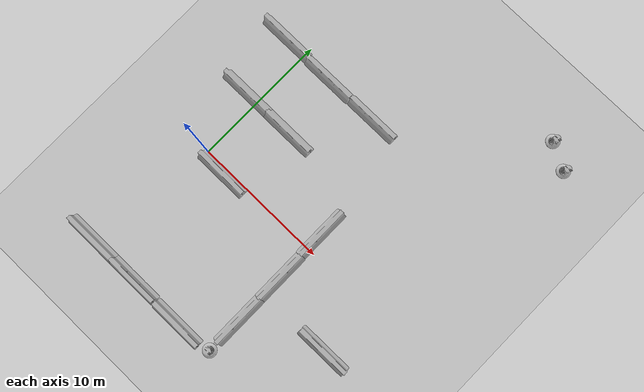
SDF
<sdf version="1.6">
 <world name="default">
  <model name="ground_plane">
   <static>1</static>
   <link name="link">
    <collision name="collision">
     <geometry><plane><normal>0 0 1</normal><size>100 100</size></plane></geometry>
     <surface><friction><ode><mu>100</mu><mu2>50</mu2></ode></friction></surface>
    </collision>
    <visual name="visual">
     <cast_shadows>0</cast_shadows>
     <geometry><plane><normal>0 0 1</normal><size>100 100</size></plane></geometry>
     <material>
      <script><uri>file://media/materials/scripts/gazebo.material</uri><name>Gazebo/Grey</name></script>
     </material>
    </visual>
   </link>
  </model>
  <model name="jersey_barrier_clone">
   <static>1</static>
   <link name="link">
    <visual name="visual">
     <geometry><mesh><uri>model://jersey_barrier/meshes/jersey_barrier.dae</uri></mesh></geometry>
    </visual>
    <collision name="upright">
     <pose>0 0 0.5715 0 -0 0</pose>
     <geometry><box><size>4.06542 0.3063 1.143</size></box></geometry>
    </collision>
    <collision name="base">
     <pose>0 0 0.032258 0 -0 0</pose>
     <geometry><box><size>4.06542 0.8107 0.064516</size></box></geometry>
    </collision>
    <collision name="base2">
     <pose>0 0 0.1 0 -0 0</pose>
     <geometry><box><size>4.06542 0.65 0.1</size></box></geometry>
    </collision>
    <collision name="base3">
     <pose>0 0 0.2 0 -0 0</pose>
     <geometry><box><size>4.06542 0.5 0.1</size></box></geometry>
    </collision>
    <collision name="left-angle">
     <pose>0 -0.224 0.2401 0.9 -0 0</pose>
     <geometry><box><size>4.06542 0.5 0.064516</size></box></geometry>
    </collision>
    <collision name="right-angle">
     <pose>0 0.224 0.2401 -0.9 0 0</pose>
     <geometry><box><size>4.06542 0.5 0.064516</size></box></geometry>
    </collision>
   </link>
   <pose>-1.65987 9.36075 0 0 -0 0</pose>
  </model>
  <model name="jersey_barrier_clone_0">
   <static>1</static>
   <link name="link">
    <visual name="visual">
     <geometry><mesh><uri>model://jersey_barrier/meshes/jersey_barrier.dae</uri></mesh></geometry>
    </visual>
    <collision name="upright">
     <pose>0 0 0.5715 0 -0 0</pose>
     <geometry><box><size>4.06542 0.3063 1.143</size></box></geometry>
    </collision>
    <collision name="base">
     <pose>0 0 0.032258 0 -0 0</pose>
     <geometry><box><size>4.06542 0.8107 0.064516</size></box></geometry>
    </collision>
    <collision name="base2">
     <pose>0 0 0.1 0 -0 0</pose>
     <geometry><box><size>4.06542 0.65 0.1</size></box></geometry>
    </collision>
    <collision name="base3">
     <pose>0 0 0.2 0 -0 0</pose>
     <geometry><box><size>4.06542 0.5 0.1</size></box></geometry>
    </collision>
    <collision name="left-angle">
     <pose>0 -0.224 0.2401 0.9 -0 0</pose>
     <geometry><box><size>4.06542 0.5 0.064516</size></box></geometry>
    </collision>
    <collision name="right-angle">
     <pose>0 0.224 0.2401 -0.9 0 0</pose>
     <geometry><box><size>4.06542 0.5 0.064516</size></box></geometry>
    </collision>
   </link>
   <pose>2.39773 9.29085 0 0 -0 0</pose>
  </model>
  <model name="jersey_barrier_clone_1">
   <static>1</static>
   <link name="link">
    <visual name="visual">
     <geometry><mesh><uri>model://jersey_barrier/meshes/jersey_barrier.dae</uri></mesh></geometry>
    </visual>
    <collision name="upright">
     <pose>0 0 0.5715 0 -0 0</pose>
     <geometry><box><size>4.06542 0.3063 1.143</size></box></geometry>
    </collision>
    <collision name="base">
     <pose>0 0 0.032258 0 -0 0</pose>
     <geometry><box><size>4.06542 0.8107 0.064516</size></box></geometry>
    </collision>
    <collision name="base2">
     <pose>0 0 0.1 0 -0 0</pose>
     <geometry><box><size>4.06542 0.65 0.1</size></box></geometry>
    </collision>
    <collision name="base3">
     <pose>0 0 0.2 0 -0 0</pose>
     <geometry><box><size>4.06542 0.5 0.1</size></box></geometry>
    </collision>
    <collision name="left-angle">
     <pose>0 -0.224 0.2401 0.9 -0 0</pose>
     <geometry><box><size>4.06542 0.5 0.064516</size></box></geometry>
    </collision>
    <collision name="right-angle">
     <pose>0 0.224 0.2401 -0.9 0 0</pose>
     <geometry><box><size>4.06542 0.5 0.064516</size></box></geometry>
    </collision>
   </link>
   <pose>6.45464 9.33993 0 0 -0 0</pose>
  </model>
  <model name="jersey_barrier_clone_3">
   <static>1</static>
   <link name="link">
    <visual name="visual">
     <geometry><mesh><uri>model://jersey_barrier/meshes/jersey_barrier.dae</uri></mesh></geometry>
    </visual>
    <collision name="upright">
     <pose>0 0 0.5715 0 -0 0</pose>
     <geometry><box><size>4.06542 0.3063 1.143</size></box></geometry>
    </collision>
    <collision name="base">
     <pose>0 0 0.032258 0 -0 0</pose>
     <geometry><box><size>4.06542 0.8107 0.064516</size></box></geometry>
    </collision>
    <collision name="base2">
     <pose>0 0 0.1 0 -0 0</pose>
     <geometry><box><size>4.06542 0.65 0.1</size></box></geometry>
    </collision>
    <collision name="base3">
     <pose>0 0 0.2 0 -0 0</pose>
     <geometry><box><size>4.06542 0.5 0.1</size></box></geometry>
    </collision>
    <collision name="left-angle">
     <pose>0 -0.224 0.2401 0.9 -0 0</pose>
     <geometry><box><size>4.06542 0.5 0.064516</size></box></geometry>
    </collision>
    <collision name="right-angle">
     <pose>0 0.224 0.2401 -0.9 0 0</pose>
     <geometry><box><size>4.06542 0.5 0.064516</size></box></geometry>
    </collision>
    <pose>9.44656 5.35522 0 0 0 -1.56865</pose>
    <velocity>0 0 0 0 -0 0</velocity>
    <acceleration>0 0 0 0 -0 0</acceleration>
    <wrench>0 0 0 0 -0 0</wrench>
   </link>
   <pose>9.44656 5.35522 0 0 0 -1.56865</pose>
   <scale>1 1 1</scale>
  </model>
  <model name="jersey_barrier_clone_3_clone">
   <static>1</static>
   <link name="link">
    <visual name="visual">
     <geometry><mesh><uri>model://jersey_barrier/meshes/jersey_barrier.dae</uri></mesh></geometry>
    </visual>
    <collision name="upright">
     <pose>0 0 0.5715 0 -0 0</pose>
     <geometry><box><size>4.06542 0.3063 1.143</size></box></geometry>
    </collision>
    <collision name="base">
     <pose>0 0 0.032258 0 -0 0</pose>
     <geometry><box><size>4.06542 0.8107 0.064516</size></box></geometry>
    </collision>
    <collision name="base2">
     <pose>0 0 0.1 0 -0 0</pose>
     <geometry><box><size>4.06542 0.65 0.1</size></box></geometry>
    </collision>
    <collision name="base3">
     <pose>0 0 0.2 0 -0 0</pose>
     <geometry><box><size>4.06542 0.5 0.1</size></box></geometry>
    </collision>
    <collision name="left-angle">
     <pose>0 -0.224 0.2401 0.9 -0 0</pose>
     <geometry><box><size>4.06542 0.5 0.064516</size></box></geometry>
    </collision>
    <collision name="right-angle">
     <pose>0 0.224 0.2401 -0.9 0 0</pose>
     <geometry><box><size>4.06542 0.5 0.064516</size></box></geometry>
    </collision>
   </link>
   <pose>9.3727 1.33119 0 0 0 -1.56865</pose>
  </model>
  <model name="jersey_barrier_clone_3_clone_0">
   <static>1</static>
   <link name="link">
    <visual name="visual">
     <geometry><mesh><uri>model://jersey_barrier/meshes/jersey_barrier.dae</uri></mesh></geometry>
    </visual>
    <collision name="upright">
     <pose>0 0 0.5715 0 -0 0</pose>
     <geometry><box><size>4.06542 0.3063 1.143</size></box></geometry>
    </collision>
    <collision name="base">
     <pose>0 0 0.032258 0 -0 0</pose>
     <geometry><box><size>4.06542 0.8107 0.064516</size></box></geometry>
    </collision>
    <collision name="base2">
     <pose>0 0 0.1 0 -0 0</pose>
     <geometry><box><size>4.06542 0.65 0.1</size></box></geometry>
    </collision>
    <collision name="base3">
     <pose>0 0 0.2 0 -0 0</pose>
     <geometry><box><size>4.06542 0.5 0.1</size></box></geometry>
    </collision>
    <collision name="left-angle">
     <pose>0 -0.224 0.2401 0.9 -0 0</pose>
     <geometry><box><size>4.06542 0.5 0.064516</size></box></geometry>
    </collision>
    <collision name="right-angle">
     <pose>0 0.224 0.2401 -0.9 0 0</pose>
     <geometry><box><size>4.06542 0.5 0.064516</size></box></geometry>
    </collision>
   </link>
   <pose>9.4315 -2.6268 0 0 0 -1.56865</pose>
  </model>
  <model name="jersey_barrier_clone_3_clone_1">
   <static>1</static>
   <link name="link">
    <visual name="visual">
     <geometry><mesh><uri>model://jersey_barrier/meshes/jersey_barrier.dae</uri></mesh></geometry>
    </visual>
    <collision name="upright">
     <pose>0 0 0.5715 0 -0 0</pose>
     <geometry><box><size>4.06542 0.3063 1.143</size></box></geometry>
    </collision>
    <collision name="base">
     <pose>0 0 0.032258 0 -0 0</pose>
     <geometry><box><size>4.06542 0.8107 0.064516</size></box></geometry>
    </collision>
    <collision name="base2">
     <pose>0 0 0.1 0 -0 0</pose>
     <geometry><box><size>4.06542 0.65 0.1</size></box></geometry>
    </collision>
    <collision name="base3">
     <pose>0 0 0.2 0 -0 0</pose>
     <geometry><box><size>4.06542 0.5 0.1</size></box></geometry>
    </collision>
    <collision name="left-angle">
     <pose>0 -0.224 0.2401 0.9 -0 0</pose>
     <geometry><box><size>4.06542 0.5 0.064516</size></box></geometry>
    </collision>
    <collision name="right-angle">
     <pose>0 0.224 0.2401 -0.9 0 0</pose>
     <geometry><box><size>4.06542 0.5 0.064516</size></box></geometry>
    </collision>
   </link>
   <pose>9.44969 -6.53485 0 0 0 -1.56865</pose>
  </model>
  <model name="jersey_barrier_clone_2_clone">
   <static>1</static>
   <link name="link">
    <visual name="visual">
     <geometry><mesh><uri>model://jersey_barrier/meshes/jersey_barrier.dae</uri></mesh></geometry>
    </visual>
    <collision name="upright">
     <pose>0 0 0.5715 0 -0 0</pose>
     <geometry><box><size>4.06542 0.3063 1.143</size></box></geometry>
    </collision>
    <collision name="base">
     <pose>0 0 0.032258 0 -0 0</pose>
     <geometry><box><size>4.06542 0.8107 0.064516</size></box></geometry>
    </collision>
    <collision name="base2">
     <pose>0 0 0.1 0 -0 0</pose>
     <geometry><box><size>4.06542 0.65 0.1</size></box></geometry>
    </collision>
    <collision name="base3">
     <pose>0 0 0.2 0 -0 0</pose>
     <geometry><box><size>4.06542 0.5 0.1</size></box></geometry>
    </collision>
    <collision name="left-angle">
     <pose>0 -0.224 0.2401 0.9 -0 0</pose>
     <geometry><box><size>4.06542 0.5 0.064516</size></box></geometry>
    </collision>
    <collision name="right-angle">
     <pose>0 0.224 0.2401 -0.9 0 0</pose>
     <geometry><box><size>4.06542 0.5 0.064516</size></box></geometry>
    </collision>
   </link>
   <pose>6.70657 -9.54347 0 0 -0 0</pose>
  </model>
  <model name="jersey_barrier_clone_2_clone_0">
   <static>1</static>
   <link name="link">
    <visual name="visual">
     <geometry><mesh><uri>model://jersey_barrier/meshes/jersey_barrier.dae</uri></mesh></geometry>
    </visual>
    <collision name="upright">
     <pose>0 0 0.5715 0 -0 0</pose>
     <geometry><box><size>4.06542 0.3063 1.143</size></box></geometry>
    </collision>
    <collision name="base">
     <pose>0 0 0.032258 0 -0 0</pose>
     <geometry><box><size>4.06542 0.8107 0.064516</size></box></geometry>
    </collision>
    <collision name="base2">
     <pose>0 0 0.1 0 -0 0</pose>
     <geometry><box><size>4.06542 0.65 0.1</size></box></geometry>
    </collision>
    <collision name="base3">
     <pose>0 0 0.2 0 -0 0</pose>
     <geometry><box><size>4.06542 0.5 0.1</size></box></geometry>
    </collision>
    <collision name="left-angle">
     <pose>0 -0.224 0.2401 0.9 -0 0</pose>
     <geometry><box><size>4.06542 0.5 0.064516</size></box></geometry>
    </collision>
    <collision name="right-angle">
     <pose>0 0.224 0.2401 -0.9 0 0</pose>
     <geometry><box><size>4.06542 0.5 0.064516</size></box></geometry>
    </collision>
   </link>
   <pose>2.59616 -9.50928 0 0 -0 0</pose>
  </model>
  <model name="jersey_barrier_clone_2_clone_1">
   <static>1</static>
   <link name="link">
    <visual name="visual">
     <geometry><mesh><uri>model://jersey_barrier/meshes/jersey_barrier.dae</uri></mesh></geometry>
    </visual>
    <collision name="upright">
     <pose>0 0 0.5715 0 -0 0</pose>
     <geometry><box><size>4.06542 0.3063 1.143</size></box></geometry>
    </collision>
    <collision name="base">
     <pose>0 0 0.032258 0 -0 0</pose>
     <geometry><box><size>4.06542 0.8107 0.064516</size></box></geometry>
    </collision>
    <collision name="base2">
     <pose>0 0 0.1 0 -0 0</pose>
     <geometry><box><size>4.06542 0.65 0.1</size></box></geometry>
    </collision>
    <collision name="base3">
     <pose>0 0 0.2 0 -0 0</pose>
     <geometry><box><size>4.06542 0.5 0.1</size></box></geometry>
    </collision>
    <collision name="left-angle">
     <pose>0 -0.224 0.2401 0.9 -0 0</pose>
     <geometry><box><size>4.06542 0.5 0.064516</size></box></geometry>
    </collision>
    <collision name="right-angle">
     <pose>0 0.224 0.2401 -0.9 0 0</pose>
     <geometry><box><size>4.06542 0.5 0.064516</size></box></geometry>
    </collision>
   </link>
   <pose>-1.33414 -9.50852 0 0 -0 0</pose>
  </model>
  <model name="Construction Barrel">
   <link name="link">
    <inertial>
     <pose>0 0 0.4 0 -0 0</pose>
     <mass>500</mass>
     <inertia><ixx>51.2096</ixx><iyy>51.2096</iyy><izz>25</izz><ixy>0</ixy><ixz>0</ixz><iyz>0</iyz></inertia>
    </inertial>
    <collision name="collision">
     <geometry><mesh><uri>model://construction_barrel/meshes/construction_barrel.dae</uri></mesh></geometry>
    </collision>
    <visual name="visual">
     <geometry><mesh><uri>model://construction_barrel/meshes/construction_barrel.dae</uri></mesh></geometry>
    </visual>
    <pose>9.07447 7.9106 -0 0 -0 -5.2e-05</pose>
    <velocity>0 0 0 0 -0 0</velocity>
    <acceleration>-3.87344 -0.445982 -0.496385 -2.02796 0.258707 3.1404</acceleration>
    <wrench>-1936.72 -222.991 -248.192 0 -0 0</wrench>
   </link>
   <pose>9.07447 7.9106 -0 0 -0 -5.2e-05</pose>
   <scale>1 1 1</scale>
  </model>
  <model name="Construction Barrel_0">
   <link name="link">
    <inertial>
     <pose>0 0 0.4 0 -0 0</pose>
     <mass>500</mass>
     <inertia><ixx>51.2096</ixx><iyy>51.2096</iyy><izz>25</izz><ixy>0</ixy><ixz>0</ixz><iyz>0</iyz></inertia>
    </inertial>
    <collision name="collision">
     <geometry><mesh><uri>model://construction_barrel/meshes/construction_barrel.dae</uri></mesh></geometry>
    </collision>
    <visual name="visual">
     <geometry><mesh><uri>model://construction_barrel/meshes/construction_barrel.dae</uri></mesh></geometry>
    </visual>
    <pose>8.12831 8.4164 -0 0 -0 -4.7e-05</pose>
    <velocity>0 0 0 0 -0 0</velocity>
    <acceleration>-3.87344 -0.446 -0.496384 -2.02791 0.258705 3.1404</acceleration>
    <wrench>-1936.72 -223 -248.192 0 -0 0</wrench>
   </link>
   <pose>8.12831 8.4164 -0 0 -0 -4.7e-05</pose>
   <scale>1 1 1</scale>
  </model>
  <model name="Construction Barrel_3">
   <link name="link">
    <inertial>
     <pose>0 0 0.4 0 -0 0</pose>
     <mass>500</mass>
     <inertia><ixx>51.2096</ixx><iyy>51.2096</iyy><izz>25</izz><ixy>0</ixy><ixz>0</ixz><iyz>0</iyz></inertia>
    </inertial>
    <collision name="collision">
     <geometry><mesh><uri>model://construction_barrel/meshes/construction_barrel.dae</uri></mesh></geometry>
    </collision>
    <visual name="visual">
     <geometry><mesh><uri>model://construction_barrel/meshes/construction_barrel.dae</uri></mesh></geometry>
    </visual>
   </link>
   <pose>9.45364 -9.29428 -0 0 -0 -4.2e-05</pose>
  </model>
  <model name="jersey_barrier_0_clone">
   <static>1</static>
   <link name="link">
    <visual name="visual">
     <geometry><mesh><uri>model://jersey_barrier/meshes/jersey_barrier.dae</uri></mesh></geometry>
    </visual>
    <collision name="upright">
     <pose>0 0 0.5715 0 -0 0</pose>
     <geometry><box><size>4.06542 0.3063 1.143</size></box></geometry>
    </collision>
    <collision name="base">
     <pose>0 0 0.032258 0 -0 0</pose>
     <geometry><box><size>4.06542 0.8107 0.064516</size></box></geometry>
    </collision>
    <collision name="base2">
     <pose>0 0 0.1 0 -0 0</pose>
     <geometry><box><size>4.06542 0.65 0.1</size></box></geometry>
    </collision>
    <collision name="base3">
     <pose>0 0 0.2 0 -0 0</pose>
     <geometry><box><size>4.06542 0.5 0.1</size></box></geometry>
    </collision>
    <collision name="left-angle">
     <pose>0 -0.224 0.2401 0.9 -0 0</pose>
     <geometry><box><size>4.06542 0.5 0.064516</size></box></geometry>
    </collision>
    <collision name="right-angle">
     <pose>0 0.224 0.2401 -0.9 0 0</pose>
     <geometry><box><size>4.06542 0.5 0.064516</size></box></geometry>
    </collision>
   </link>
   <pose>-0.93635 4.73131 0 0 -0 0</pose>
  </model>
  <model name="jersey_barrier_0_clone_0">
   <static>1</static>
   <link name="link">
    <visual name="visual">
     <geometry><mesh><uri>model://jersey_barrier/meshes/jersey_barrier.dae</uri></mesh></geometry>
    </visual>
    <collision name="upright">
     <pose>0 0 0.5715 0 -0 0</pose>
     <geometry><box><size>4.06542 0.3063 1.143</size></box></geometry>
    </collision>
    <collision name="base">
     <pose>0 0 0.032258 0 -0 0</pose>
     <geometry><box><size>4.06542 0.8107 0.064516</size></box></geometry>
    </collision>
    <collision name="base2">
     <pose>0 0 0.1 0 -0 0</pose>
     <geometry><box><size>4.06542 0.65 0.1</size></box></geometry>
    </collision>
    <collision name="base3">
     <pose>0 0 0.2 0 -0 0</pose>
     <geometry><box><size>4.06542 0.5 0.1</size></box></geometry>
    </collision>
    <collision name="left-angle">
     <pose>0 -0.224 0.2401 0.9 -0 0</pose>
     <geometry><box><size>4.06542 0.5 0.064516</size></box></geometry>
    </collision>
    <collision name="right-angle">
     <pose>0 0.224 0.2401 -0.9 0 0</pose>
     <geometry><box><size>4.06542 0.5 0.064516</size></box></geometry>
    </collision>
   </link>
   <pose>2.99134 4.7208 0 0 -0 0</pose>
  </model>
  <model name="jersey_barrier_0_clone_1_clone">
   <static>1</static>
   <link name="link">
    <visual name="visual">
     <geometry><mesh><uri>model://jersey_barrier/meshes/jersey_barrier.dae</uri></mesh></geometry>
    </visual>
    <collision name="upright">
     <pose>0 0 0.5715 0 -0 0</pose>
     <geometry><box><size>4.06542 0.3063 1.143</size></box></geometry>
    </collision>
    <collision name="base">
     <pose>0 0 0.032258 0 -0 0</pose>
     <geometry><box><size>4.06542 0.8107 0.064516</size></box></geometry>
    </collision>
    <collision name="base2">
     <pose>0 0 0.1 0 -0 0</pose>
     <geometry><box><size>4.06542 0.65 0.1</size></box></geometry>
    </collision>
    <collision name="base3">
     <pose>0 0 0.2 0 -0 0</pose>
     <geometry><box><size>4.06542 0.5 0.1</size></box></geometry>
    </collision>
    <collision name="left-angle">
     <pose>0 -0.224 0.2401 0.9 -0 0</pose>
     <geometry><box><size>4.06542 0.5 0.064516</size></box></geometry>
    </collision>
    <collision name="right-angle">
     <pose>0 0.224 0.2401 -0.9 0 0</pose>
     <geometry><box><size>4.06542 0.5 0.064516</size></box></geometry>
    </collision>
   </link>
   <pose>1.76519 -0.393386 -0 0 -0 0</pose>
  </model>
 </world>
</sdf>
